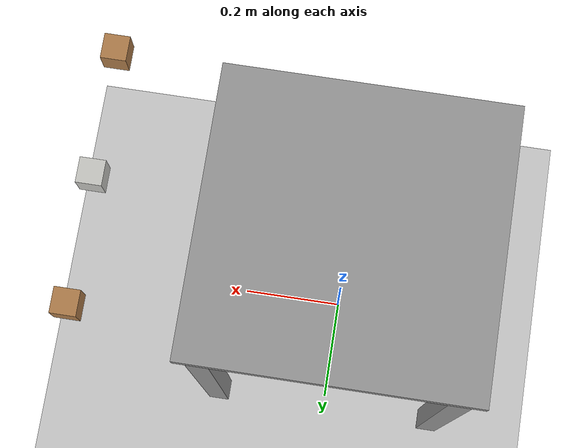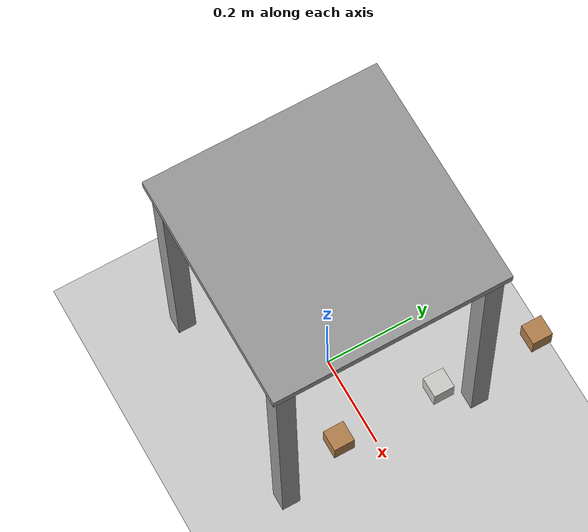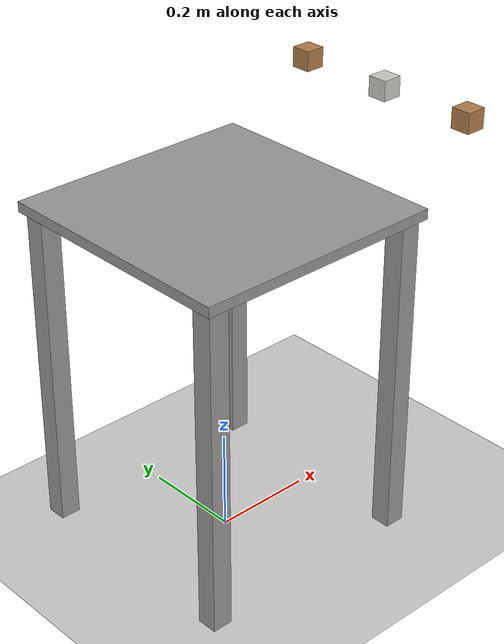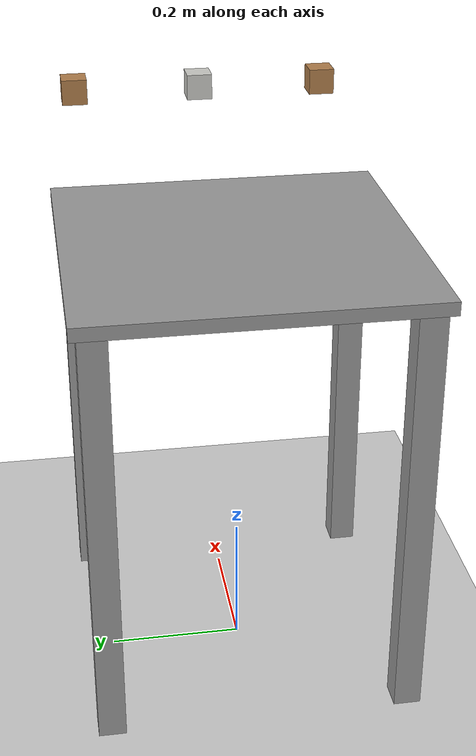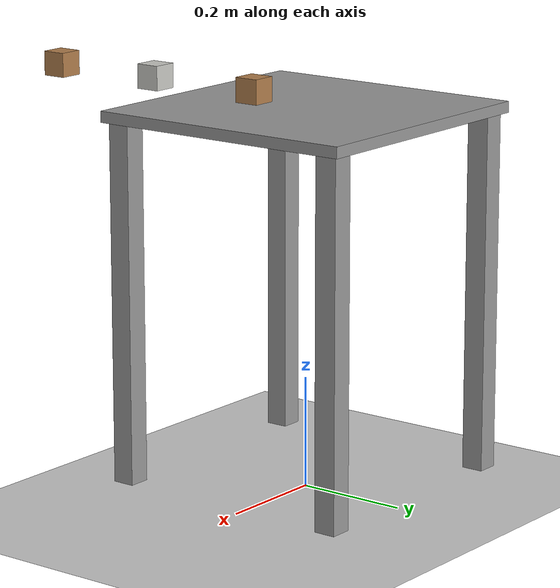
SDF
<sdf version="1.7">
 <world name="ur3_cubes">
  <gravity>0 0 -9.81</gravity>
  <physics name="default_physics" default="0" type="ode">
   <max_step_size>0.001</max_step_size>
   <real_time_factor>1</real_time_factor>
   <real_time_update_rate>1000</real_time_update_rate>
  </physics>
  <plugin name="ros_link_attacher_plugin" filename="libgazebo_ros_link_attacher.so"/>
  <scene><ambient>0.4 0.4 0.4 1</ambient><background>0.4 0.43 0.67 1</background><shadows>1</shadows></scene>
  <light name="sun" type="directional">
   <pose>0 0 10 0 -0 0</pose>
   <diffuse>0.8 0.8 0.8 1</diffuse>
   <specular>0.2 0.2 0.2 1</specular>
   <attenuation>
    <range>1000</range>
    <constant>0.9</constant>
    <linear>0.01</linear>
    <quadratic>0.001</quadratic>
   </attenuation>
   <direction>-0.5 0.1 -0.9</direction>
   <spot><inner_angle>0</inner_angle><outer_angle>0</outer_angle><falloff>0</falloff></spot>
  </light>
  <model name="floor">
   <static>1</static>
   <link name="link">
    <collision name="collision">
     <geometry><plane><normal>0 0 1</normal><size>10 10</size></plane></geometry>
     <surface>
      <contact><collide_bitmask>65535</collide_bitmask></contact>
      <friction><ode><mu>100</mu><mu2>50</mu2></ode></friction>
     </surface>
    </collision>
    <visual name="visual">
     <cast_shadows>0</cast_shadows>
     <geometry><plane><normal>0 0 1</normal><size>100 100</size></plane></geometry>
     <material>
      <script><uri>model://floor/materials/scripts/checkboard.material</uri><name>CheckerTexture</name></script>
     </material>
    </visual>
   </link>
  </model>
  <model name="ur_base">
   <frame name="ur_base::__model__" attached_to="ur_base::top_plate">
    <pose relative_to="__model__">0 0 0 0 -0 0</pose>
   </frame>
   <static>1</static>
   <link name="ur_base::top_plate">
    <pose relative_to="ur_base::__model__">0 0 0.67501 0 -0 0</pose>
    <collision name="top_plate_collision">
     <geometry><box><size>0.5 0.5 0.02</size></box></geometry>
     <surface><contact><collide_bitmask>1</collide_bitmask></contact></surface>
    </collision>
    <visual name="top_plate_visual">
     <geometry><box><size>0.5 0.5 0.02</size></box></geometry>
     <material>
      <script><uri>model://media/materials/scripts/gazebo.material</uri><name>Gazebo/Grey</name></script>
     </material>
    </visual>
   </link>
   <link name="ur_base::leg1">
    <pose relative_to="ur_base::__model__">0.22 0.22 0.35 0 -0 0</pose>
    <visual name="leg1_visual">
     <geometry><box><size>0.04 0.04 0.655</size></box></geometry>
     <material>
      <script><uri>model://media/materials/scripts/gazebo.material</uri><name>Gazebo/Grey</name></script>
     </material>
    </visual>
   </link>
   <link name="ur_base::leg2">
    <pose relative_to="ur_base::__model__">-0.22 0.22 0.35 0 -0 0</pose>
    <visual name="leg2_visual">
     <geometry><box><size>0.04 0.04 0.655</size></box></geometry>
     <material>
      <script><uri>model://media/materials/scripts/gazebo.material</uri><name>Gazebo/Grey</name></script>
     </material>
    </visual>
   </link>
   <link name="ur_base::leg3">
    <pose relative_to="ur_base::__model__">0.22 -0.22 0.35 0 -0 0</pose>
    <visual name="leg3_visual">
     <geometry><box><size>0.04 0.04 0.655</size></box></geometry>
     <material>
      <script><uri>model://media/materials/scripts/gazebo.material</uri><name>Gazebo/Grey</name></script>
     </material>
    </visual>
   </link>
   <link name="ur_base::leg4">
    <pose relative_to="ur_base::__model__">-0.22 -0.22 0.35 0 -0 0</pose>
    <visual name="leg4_visual">
     <geometry><box><size>0.04 0.04 0.655</size></box></geometry>
     <material>
      <script><uri>model://media/materials/scripts/gazebo.material</uri><name>Gazebo/Grey</name></script>
     </material>
    </visual>
   </link>
  </model>
  <model name="cube1">
   <pose>0.4 -0.2 0.773999 0 -0 0</pose>
   <link name="link">
    <pose>0 0 0.02 0 -0 0</pose>
    <inertial>
     <mass>0.0565</mass>
     <inertia>
      <ixx>2.35417e-05</ixx>
      <ixy>0</ixy>
      <ixz>0</ixz>
      <iyy>2.35417e-05</iyy>
      <iyz>0</iyz>
      <izz>2.35417e-05</izz>
     </inertia>
    </inertial>
    <collision name="collision">
     <geometry><box><size>0.04 0.04 0.04</size></box></geometry>
     <surface>
      <contact>
       <poissons_ratio>0.347</poissons_ratio>
       <elastic_modulus>8.8e+09</elastic_modulus>
       <ode><kp>100000</kp><kd>1</kd><max_vel>1</max_vel><min_depth>0.001</min_depth></ode>
      </contact>
      <friction>
       <torsional>
        <coefficient>1</coefficient>
        <use_patch_radius>0</use_patch_radius>
        <surface_radius>0.05</surface_radius>
       </torsional>
      </friction>
     </surface>
    </collision>
    <visual name="visual">
     <geometry><box><size>0.04 0.04 0.04</size></box></geometry>
     <material>
      <script><uri>model://media/materials/scripts/gazebo.material</uri><name>Gazebo/Wood</name></script>
     </material>
    </visual>
   </link>
  </model>
  <model name="cube2">
   <pose>0.4 0 0.773999 0 -0 0</pose>
   <link name="link">
    <pose>0 0 0.02 0 -0 0</pose>
    <inertial>
     <mass>0.0565</mass>
     <inertia>
      <ixx>2.35417e-05</ixx>
      <ixy>0</ixy>
      <ixz>0</ixz>
      <iyy>2.35417e-05</iyy>
      <iyz>0</iyz>
      <izz>2.35417e-05</izz>
     </inertia>
    </inertial>
    <collision name="collision">
     <geometry><box><size>0.04 0.04 0.04</size></box></geometry>
     <surface>
      <contact>
       <poissons_ratio>0.347</poissons_ratio>
       <elastic_modulus>8.8e+09</elastic_modulus>
       <ode><kp>100000</kp><kd>1</kd><max_vel>1</max_vel><min_depth>0.001</min_depth></ode>
      </contact>
      <friction>
       <torsional>
        <coefficient>1</coefficient>
        <use_patch_radius>0</use_patch_radius>
        <surface_radius>0.05</surface_radius>
       </torsional>
      </friction>
     </surface>
    </collision>
    <visual name="visual">
     <geometry><box><size>0.04 0.04 0.04</size></box></geometry>
     <material>
      <script><uri>model://media/materials/scripts/gazebo.material</uri><name>CeilingTiled</name></script>
     </material>
    </visual>
   </link>
  </model>
  <model name="cube3">
   <pose>0.4 0.2 0.773999 0 -0 0</pose>
   <link name="link">
    <pose>0 0 0.02 0 -0 0</pose>
    <inertial>
     <mass>0.0565</mass>
     <inertia>
      <ixx>2.35417e-05</ixx>
      <ixy>0</ixy>
      <ixz>0</ixz>
      <iyy>2.35417e-05</iyy>
      <iyz>0</iyz>
      <izz>2.35417e-05</izz>
     </inertia>
    </inertial>
    <collision name="collision">
     <geometry><box><size>0.04 0.04 0.04</size></box></geometry>
     <surface>
      <contact>
       <poissons_ratio>0.347</poissons_ratio>
       <elastic_modulus>8.8e+09</elastic_modulus>
       <ode><kp>100000</kp><kd>1</kd><max_vel>1</max_vel><min_depth>0.001</min_depth></ode>
      </contact>
      <friction>
       <torsional>
        <coefficient>1</coefficient>
        <use_patch_radius>0</use_patch_radius>
        <surface_radius>0.05</surface_radius>
       </torsional>
      </friction>
     </surface>
    </collision>
    <visual name="visual">
     <geometry><box><size>0.04 0.04 0.04</size></box></geometry>
     <material>
      <script><uri>model://media/materials/scripts/gazebo.material</uri><name>Gazebo/WoodPallet</name></script>
     </material>
    </visual>
   </link>
  </model>
  <magnetic_field>6e-06 2.3e-05 -4.2e-05</magnetic_field>
  <atmosphere type="adiabatic"/>
  <spherical_coordinates>
   <surface_model>EARTH_WGS84</surface_model>
   <latitude_deg>0</latitude_deg>
   <longitude_deg>0</longitude_deg>
   <elevation>0</elevation>
   <heading_deg>0</heading_deg>
  </spherical_coordinates>
 </world>
</sdf>
